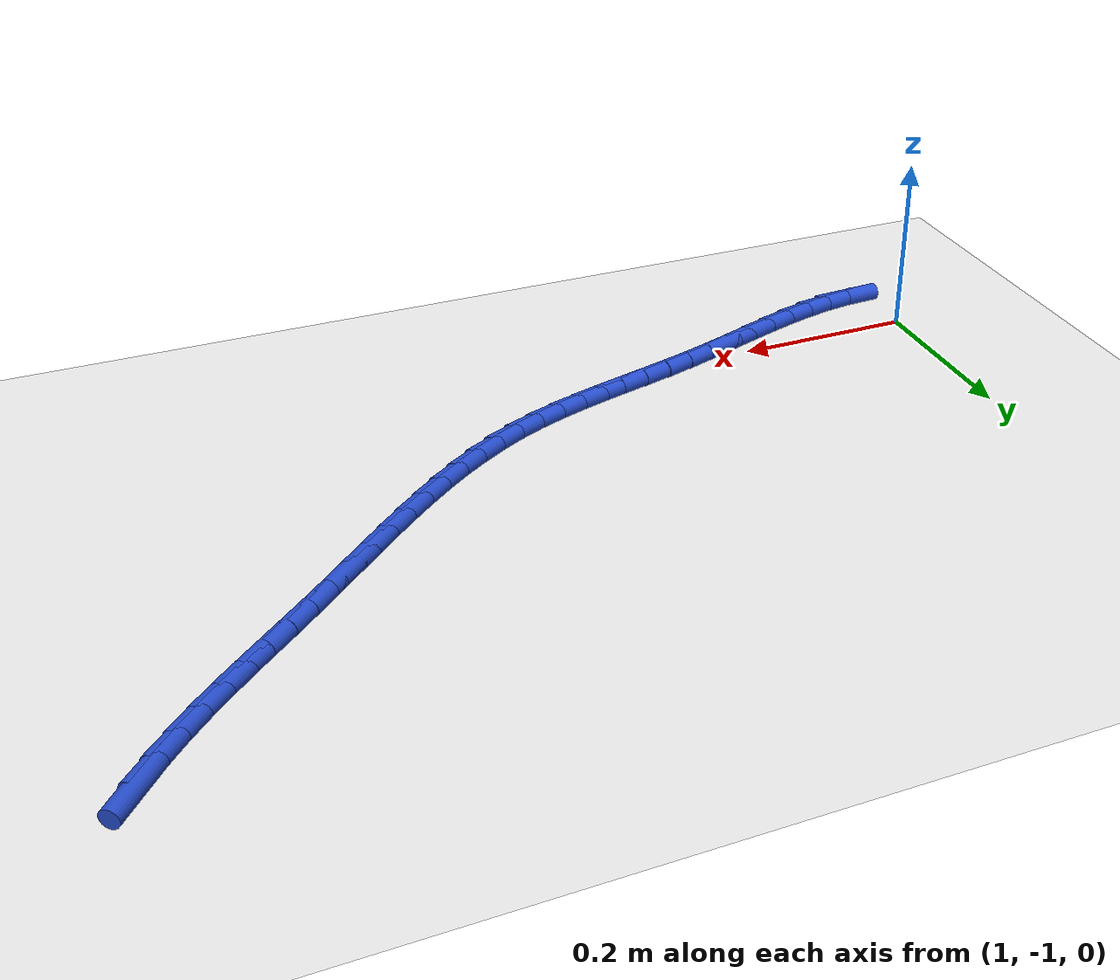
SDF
<sdf version="1.6">
 <world name="default">
  <model name="ground_plane">
   <static>1</static>
   <link name="link">
    <collision name="collision">
     <geometry><plane><normal>0 0 1</normal><size>100 100</size></plane></geometry>
     <surface><friction><ode><mu>100</mu><mu2>50</mu2></ode></friction></surface>
    </collision>
    <visual name="visual">
     <cast_shadows>0</cast_shadows>
     <geometry><plane><normal>0 0 1</normal><size>100 100</size></plane></geometry>
     <material>
      <script><uri>file://media/materials/scripts/gazebo.material</uri><name>Gazebo/WhiteGlow</name></script>
     </material>
    </visual>
   </link>
  </model>
  <model name="line">
   <link name="link_123">
    <pose>1.9588822450729308 -0.5271933499219957 0.01 0 1.57 0.8810612563199051</pose>
    <collision name="collision">
     <geometry><cylinder><radius>0.01</radius><length>0.08</length></cylinder></geometry>
    </collision>
    <visual name="visual">
     <material>
      <script><name>Gazebo/Blue</name><uri>file://media/materials/scripts/gazebo.material</uri></script>
     </material>
     <geometry><cylinder><radius>0.01</radius><length>0.08</length></cylinder></geometry>
    </visual>
   </link>
   <link name="link_124">
    <pose>1.9394317898290738 -0.5507727801249737 0.01 0 1.57 0.8319312484749323</pose>
    <collision name="collision">
     <geometry><cylinder><radius>0.01</radius><length>0.08</length></cylinder></geometry>
    </collision>
    <visual name="visual">
     <material>
      <script><name>Gazebo/Blue</name><uri>file://media/materials/scripts/gazebo.material</uri></script>
     </material>
     <geometry><cylinder><radius>0.01</radius><length>0.08</length></cylinder></geometry>
    </visual>
   </link>
   <link name="link_125">
    <pose>1.918649899620862 -0.5735846897610535 0.01 0 1.57 0.7925714548116782</pose>
    <collision name="collision">
     <geometry><cylinder><radius>0.01</radius><length>0.08</length></cylinder></geometry>
    </collision>
    <visual name="visual">
     <material>
      <script><name>Gazebo/Blue</name><uri>file://media/materials/scripts/gazebo.material</uri></script>
     </material>
     <geometry><cylinder><radius>0.01</radius><length>0.08</length></cylinder></geometry>
    </visual>
   </link>
   <link name="link_126">
    <pose>1.8967677763234605 -0.5957830204240031 0.01 0 1.57 0.7626449612142943</pose>
    <collision name="collision">
     <geometry><cylinder><radius>0.01</radius><length>0.08</length></cylinder></geometry>
    </collision>
    <visual name="visual">
     <material>
      <script><name>Gazebo/Blue</name><uri>file://media/materials/scripts/gazebo.material</uri></script>
     </material>
     <geometry><cylinder><radius>0.01</radius><length>0.08</length></cylinder></geometry>
    </visual>
   </link>
   <link name="link_127">
    <pose>1.8740166218120333 -0.6175217137075921 0.01 0 1.57 0.7417868353208188</pose>
    <collision name="collision">
     <geometry><cylinder><radius>0.01</radius><length>0.08</length></cylinder></geometry>
    </collision>
    <visual name="visual">
     <material>
      <script><name>Gazebo/Blue</name><uri>file://media/materials/scripts/gazebo.material</uri></script>
     </material>
     <geometry><cylinder><radius>0.01</radius><length>0.08</length></cylinder></geometry>
    </visual>
   </link>
   <link name="link_128">
    <pose>1.850627637961745 -0.6389547112055896 0.01 0 1.57 0.7296763260228772</pose>
    <collision name="collision">
     <geometry><cylinder><radius>0.01</radius><length>0.08</length></cylinder></geometry>
    </collision>
    <visual name="visual">
     <material>
      <script><name>Gazebo/Blue</name><uri>file://media/materials/scripts/gazebo.material</uri></script>
     </material>
     <geometry><cylinder><radius>0.01</radius><length>0.08</length></cylinder></geometry>
    </visual>
   </link>
   <link name="link_129">
    <pose>1.826832026647758 -0.6602359545117642 0.01 0 1.57 0.7260790893695942</pose>
    <collision name="collision">
     <geometry><cylinder><radius>0.01</radius><length>0.08</length></cylinder></geometry>
    </collision>
    <visual name="visual">
     <material>
      <script><name>Gazebo/Blue</name><uri>file://media/materials/scripts/gazebo.material</uri></script>
     </material>
     <geometry><cylinder><radius>0.01</radius><length>0.08</length></cylinder></geometry>
    </visual>
   </link>
   <link name="link_130">
    <pose>1.8028609897452377 -0.6815193852198853 0.01 0 1.57 0.7308671022438182</pose>
    <collision name="collision">
     <geometry><cylinder><radius>0.01</radius><length>0.08</length></cylinder></geometry>
    </collision>
    <visual name="visual">
     <material>
      <script><name>Gazebo/Blue</name><uri>file://media/materials/scripts/gazebo.material</uri></script>
     </material>
     <geometry><cylinder><radius>0.01</radius><length>0.08</length></cylinder></geometry>
    </visual>
   </link>
   <link name="link_131">
    <pose>1.778945729129348 -0.7029589449237215 0.01 0 1.57 0.7419190525596305</pose>
    <collision name="collision">
     <geometry><cylinder><radius>0.01</radius><length>0.08</length></cylinder></geometry>
    </collision>
    <visual name="visual">
     <material>
      <script><name>Gazebo/Blue</name><uri>file://media/materials/scripts/gazebo.material</uri></script>
     </material>
     <geometry><cylinder><radius>0.01</radius><length>0.08</length></cylinder></geometry>
    </visual>
   </link>
   <link name="link_132">
    <pose>1.7552700623551238 -0.7246604101571064 0.01 0 1.57 0.7492217328700398</pose>
    <collision name="collision">
     <geometry><cylinder><radius>0.01</radius><length>0.08</length></cylinder></geometry>
    </collision>
    <visual name="visual">
     <material>
      <script><name>Gazebo/Blue</name><uri>file://media/materials/scripts/gazebo.material</uri></script>
     </material>
     <geometry><cylinder><radius>0.01</radius><length>0.08</length></cylinder></geometry>
    </visual>
   </link>
   <link name="link_133">
    <pose>1.7317911547433265 -0.7464991707263835 0.01 0 1.57 0.7497735870962552</pose>
    <collision name="collision">
     <geometry><cylinder><radius>0.01</radius><length>0.08</length></cylinder></geometry>
    </collision>
    <visual name="visual">
     <material>
      <script><name>Gazebo/Blue</name><uri>file://media/materials/scripts/gazebo.material</uri></script>
     </material>
     <geometry><cylinder><radius>0.01</radius><length>0.08</length></cylinder></geometry>
    </visual>
   </link>
   <link name="link_134">
    <pose>1.7083984816961197 -0.768281811209135 0.01 0 1.57 0.7435121212446527</pose>
    <collision name="collision">
     <geometry><cylinder><radius>0.01</radius><length>0.08</length></cylinder></geometry>
    </collision>
    <visual name="visual">
     <material>
      <script><name>Gazebo/Blue</name><uri>file://media/materials/scripts/gazebo.material</uri></script>
     </material>
     <geometry><cylinder><radius>0.01</radius><length>0.08</length></cylinder></geometry>
    </visual>
   </link>
   <link name="link_135">
    <pose>1.68498150662492 -0.7898149039946264 0.01 0 1.57 0.7303108153020426</pose>
    <collision name="collision">
     <geometry><cylinder><radius>0.01</radius><length>0.08</length></cylinder></geometry>
    </collision>
    <visual name="visual">
     <material>
      <script><name>Gazebo/Blue</name><uri>file://media/materials/scripts/gazebo.material</uri></script>
     </material>
     <geometry><cylinder><radius>0.01</radius><length>0.08</length></cylinder></geometry>
    </visual>
   </link>
   <link name="link_136">
    <pose>1.6614296929411458 -0.8109050214721235 0.01 0 1.57 0.7099842562844756</pose>
    <collision name="collision">
     <geometry><cylinder><radius>0.01</radius><length>0.08</length></cylinder></geometry>
    </collision>
    <visual name="visual">
     <material>
      <script><name>Gazebo/Blue</name><uri>file://media/materials/scripts/gazebo.material</uri></script>
     </material>
     <geometry><cylinder><radius>0.01</radius><length>0.08</length></cylinder></geometry>
    </visual>
   </link>
   <link name="link_137">
    <pose>1.6376325040562136 -0.831358736030892 0.01 0 1.57 0.6823038291740424</pose>
    <collision name="collision">
     <geometry><cylinder><radius>0.01</radius><length>0.08</length></cylinder></geometry>
    </collision>
    <visual name="visual">
     <material>
      <script><name>Gazebo/Blue</name><uri>file://media/materials/scripts/gazebo.material</uri></script>
     </material>
     <geometry><cylinder><radius>0.01</radius><length>0.08</length></cylinder></geometry>
    </visual>
   </link>
   <link name="link_138">
    <pose>1.61347940338154 -0.8509826200601982 0.01 0 1.57 0.6470262182325275</pose>
    <collision name="collision">
     <geometry><cylinder><radius>0.01</radius><length>0.08</length></cylinder></geometry>
    </collision>
    <visual name="visual">
     <material>
      <script><name>Gazebo/Blue</name><uri>file://media/materials/scripts/gazebo.material</uri></script>
     </material>
     <geometry><cylinder><radius>0.01</radius><length>0.08</length></cylinder></geometry>
    </visual>
   </link>
   <link name="link_139">
    <pose>1.588859854328544 -0.8695832459493068 0.01 0 1.57 0.6039381202162064</pose>
    <collision name="collision">
     <geometry><cylinder><radius>0.01</radius><length>0.08</length></cylinder></geometry>
    </collision>
    <visual name="visual">
     <material>
      <script><name>Gazebo/Blue</name><uri>file://media/materials/scripts/gazebo.material</uri></script>
     </material>
     <geometry><cylinder><radius>0.01</radius><length>0.08</length></cylinder></geometry>
    </visual>
   </link>
   <link name="link_140">
    <pose>1.5636633203086416 -0.886967186087484 0.01 0 1.57 0.5529199496980549</pose>
    <collision name="collision">
     <geometry><cylinder><radius>0.01</radius><length>0.08</length></cylinder></geometry>
    </collision>
    <visual name="visual">
     <material>
      <script><name>Gazebo/Blue</name><uri>file://media/materials/scripts/gazebo.material</uri></script>
     </material>
     <geometry><cylinder><radius>0.01</radius><length>0.08</length></cylinder></geometry>
    </visual>
   </link>
   <link name="link_141">
    <pose>1.5377792647332507 -0.9029410128639955 0.01 0 1.57 0.4940283475599746</pose>
    <collision name="collision">
     <geometry><cylinder><radius>0.01</radius><length>0.08</length></cylinder></geometry>
    </collision>
    <visual name="visual">
     <material>
      <script><name>Gazebo/Blue</name><uri>file://media/materials/scripts/gazebo.material</uri></script>
     </material>
     <geometry><cylinder><radius>0.01</radius><length>0.08</length></cylinder></geometry>
    </visual>
   </link>
   <link name="link_142">
    <pose>1.5110971510137883 -0.9173112986681069 0.01 0 1.57 0.42851152145078253</pose>
    <collision name="collision">
     <geometry><cylinder><radius>0.01</radius><length>0.08</length></cylinder></geometry>
    </collision>
    <visual name="visual">
     <material>
      <script><name>Gazebo/Blue</name><uri>file://media/materials/scripts/gazebo.material</uri></script>
     </material>
     <geometry><cylinder><radius>0.01</radius><length>0.08</length></cylinder></geometry>
    </visual>
   </link>
   <link name="link_143">
    <pose>1.483517820286627 -0.9299101077281767 0.01 0 1.57 0.3685161136286586</pose>
    <collision name="collision">
     <geometry><cylinder><radius>0.01</radius><length>0.08</length></cylinder></geometry>
    </collision>
    <visual name="visual">
     <material>
      <script><name>Gazebo/Blue</name><uri>file://media/materials/scripts/gazebo.material</uri></script>
     </material>
     <geometry><cylinder><radius>0.01</radius><length>0.08</length></cylinder></geometry>
    </visual>
   </link>
   <link name="link_144">
    <pose>1.4550849997484159 -0.9408896410724437 0.01 0 1.57 0.3222401763031039</pose>
    <collision name="collision">
     <geometry><cylinder><radius>0.01</radius><length>0.08</length></cylinder></geometry>
    </collision>
    <visual name="visual">
     <material>
      <script><name>Gazebo/Blue</name><uri>file://media/materials/scripts/gazebo.material</uri></script>
     </material>
     <geometry><cylinder><radius>0.01</radius><length>0.08</length></cylinder></geometry>
    </visual>
   </link>
   <link name="link_145">
    <pose>1.4259399081036284 -0.9506205298494134 0.01 0 1.57 0.2896901252512954</pose>
    <collision name="collision">
     <geometry><cylinder><radius>0.01</radius><length>0.08</length></cylinder></geometry>
    </collision>
    <visual name="visual">
     <material>
      <script><name>Gazebo/Blue</name><uri>file://media/materials/scripts/gazebo.material</uri></script>
     </material>
     <geometry><cylinder><radius>0.01</radius><length>0.08</length></cylinder></geometry>
    </visual>
   </link>
   <link name="link_146">
    <pose>1.3962256448873438 -0.9594776192162193 0.01 0 1.57 0.270510025248752</pose>
    <collision name="collision">
     <geometry><cylinder><radius>0.01</radius><length>0.08</length></cylinder></geometry>
    </collision>
    <visual name="visual">
     <material>
      <script><name>Gazebo/Blue</name><uri>file://media/materials/scripts/gazebo.material</uri></script>
     </material>
     <geometry><cylinder><radius>0.01</radius><length>0.08</length></cylinder></geometry>
    </visual>
   </link>
   <link name="link_147">
    <pose>1.366085309634642 -0.9678357543299961 0.01 0 1.57 0.2643162767468313</pose>
    <collision name="collision">
     <geometry><cylinder><radius>0.01</radius><length>0.08</length></cylinder></geometry>
    </collision>
    <visual name="visual">
     <material>
      <script><name>Gazebo/Blue</name><uri>file://media/materials/scripts/gazebo.material</uri></script>
     </material>
     <geometry><cylinder><radius>0.01</radius><length>0.08</length></cylinder></geometry>
    </visual>
   </link>
   <link name="link_148">
    <pose>1.3356620018805998 -0.9760697803478778 0.01 0 1.57 0.2707946530675773</pose>
    <collision name="collision">
     <geometry><cylinder><radius>0.01</radius><length>0.08</length></cylinder></geometry>
    </collision>
    <visual name="visual">
     <material>
      <script><name>Gazebo/Blue</name><uri>file://media/materials/scripts/gazebo.material</uri></script>
     </material>
     <geometry><cylinder><radius>0.01</radius><length>0.08</length></cylinder></geometry>
    </visual>
   </link>
   <link name="link_149">
    <pose>1.3050988211602967 -0.9845545424269982 0.01 0 1.57 0.2897254157669871</pose>
    <collision name="collision">
     <geometry><cylinder><radius>0.01</radius><length>0.08</length></cylinder></geometry>
    </collision>
    <visual name="visual">
     <material>
      <script><name>Gazebo/Blue</name><uri>file://media/materials/scripts/gazebo.material</uri></script>
     </material>
     <geometry><cylinder><radius>0.01</radius><length>0.08</length></cylinder></geometry>
    </visual>
   </link>
   <link name="link_150">
    <pose>1.274538867008812 -0.9936648857244919 0.01 0 1.57 0.3176058771366027</pose>
    <collision name="collision">
     <geometry><cylinder><radius>0.01</radius><length>0.08</length></cylinder></geometry>
    </collision>
    <visual name="visual">
     <material>
      <script><name>Gazebo/Blue</name><uri>file://media/materials/scripts/gazebo.material</uri></script>
     </material>
     <geometry><cylinder><radius>0.01</radius><length>0.08</length></cylinder></geometry>
    </visual>
   </link>
   <link name="link_151">
    <pose>1.244105266408693 -1.0036694590948392 0.01 0 1.57 0.33695369727377866</pose>
    <collision name="collision">
     <geometry><cylinder><radius>0.01</radius><length>0.08</length></cylinder></geometry>
    </collision>
    <visual name="visual">
     <material>
      <script><name>Gazebo/Blue</name><uri>file://media/materials/scripts/gazebo.material</uri></script>
     </material>
     <geometry><cylinder><radius>0.01</radius><length>0.08</length></cylinder></geometry>
    </visual>
   </link>
   <link name="link_152">
    <pose>1.2138164143920855 -1.0142800398616698 0.01 0 1.57 0.34229031080027994</pose>
    <collision name="collision">
     <geometry><cylinder><radius>0.01</radius><length>0.08</length></cylinder></geometry>
    </collision>
    <visual name="visual">
     <material>
      <script><name>Gazebo/Blue</name><uri>file://media/materials/scripts/gazebo.material</uri></script>
     </material>
     <geometry><cylinder><radius>0.01</radius><length>0.08</length></cylinder></geometry>
    </visual>
   </link>
   <link name="link_153">
    <pose>1.18365649430797 -1.0250264979907995 0.01 0 1.57 0.3335794963188497</pose>
    <collision name="collision">
     <geometry><cylinder><radius>0.01</radius><length>0.08</length></cylinder></geometry>
    </collision>
    <visual name="visual">
     <material>
      <script><name>Gazebo/Blue</name><uri>file://media/materials/scripts/gazebo.material</uri></script>
     </material>
     <geometry><cylinder><radius>0.01</radius><length>0.08</length></cylinder></geometry>
    </visual>
   </link>
   <link name="link_154">
    <pose>1.1536096703024028 -1.0354386013439414 0.01 0 1.57 0.3104192734877596</pose>
    <collision name="collision">
     <geometry><cylinder><radius>0.01</radius><length>0.08</length></cylinder></geometry>
    </collision>
    <visual name="visual">
     <material>
      <script><name>Gazebo/Blue</name><uri>file://media/materials/scripts/gazebo.material</uri></script>
     </material>
     <geometry><cylinder><radius>0.01</radius><length>0.08</length></cylinder></geometry>
    </visual>
   </link>
   <link name="link_155">
    <pose>1.1236601065214402 -1.0450461177828088 0.01 0 1.57 0.27206521184304894</pose>
    <collision name="collision">
     <geometry><cylinder><radius>0.01</radius><length>0.08</length></cylinder></geometry>
    </collision>
    <visual name="visual">
     <material>
      <script><name>Gazebo/Blue</name><uri>file://media/materials/scripts/gazebo.material</uri></script>
     </material>
     <geometry><cylinder><radius>0.01</radius><length>0.08</length></cylinder></geometry>
    </visual>
   </link>
   <link name="link_156">
    <pose>1.0937919671111391 -1.0533788151691144 0.01 0 1.57 0.21754496626717865</pose>
    <collision name="collision">
     <geometry><cylinder><radius>0.01</radius><length>0.08</length></cylinder></geometry>
    </collision>
    <visual name="visual">
     <material>
      <script><name>Gazebo/Blue</name><uri>file://media/materials/scripts/gazebo.material</uri></script>
     </material>
     <geometry><cylinder><radius>0.01</radius><length>0.08</length></cylinder></geometry>
    </visual>
   </link>
   <link name="link_157">
    <pose>1.063989416217555 -1.0599664613645712 0.01 0 1.57 0.14591195967917872</pose>
    <collision name="collision">
     <geometry><cylinder><radius>0.01</radius><length>0.08</length></cylinder></geometry>
    </collision>
    <visual name="visual">
     <material>
      <script><name>Gazebo/Blue</name><uri>file://media/materials/scripts/gazebo.material</uri></script>
     </material>
     <geometry><cylinder><radius>0.01</radius><length>0.08</length></cylinder></geometry>
    </visual>
   </link>
   <link name="link_158">
    <pose>1.0342366179867457 -1.0643388242308929 0.01 0 1.57 0.05682674001526363</pose>
    <collision name="collision">
     <geometry><cylinder><radius>0.01</radius><length>0.08</length></cylinder></geometry>
    </collision>
    <visual name="visual">
     <material>
      <script><name>Gazebo/Blue</name><uri>file://media/materials/scripts/gazebo.material</uri></script>
     </material>
     <geometry><cylinder><radius>0.01</radius><length>0.08</length></cylinder></geometry>
    </visual>
   </link>
  </model>
 </world>
</sdf>
